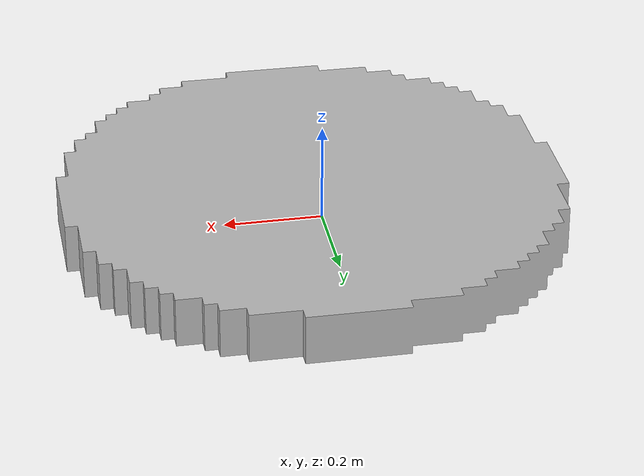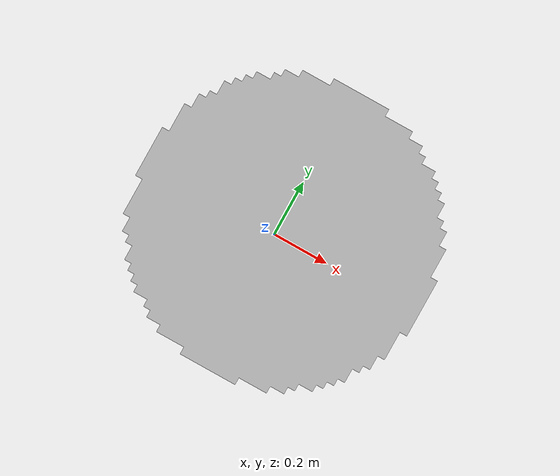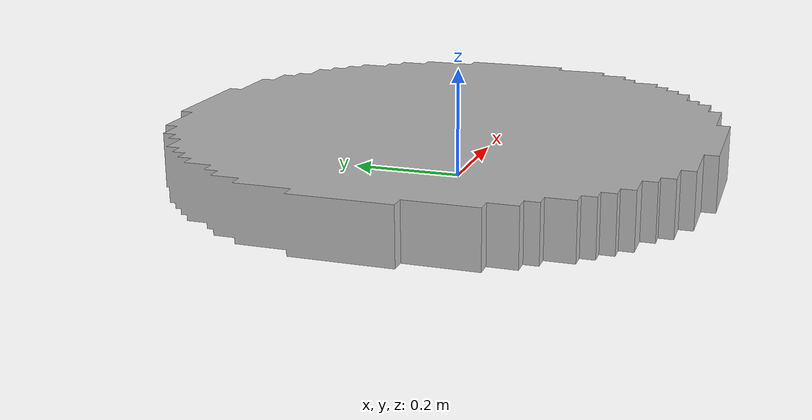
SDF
<?xml version="1.0"?>
<sdf version="1.6">
  <model name="rwc2015/old/tv/foot">
    <link name="1_link">
      <collision name="1_col">
        <geometry>
          <mesh>
            <uri>model://rwc2015/old/tv/foot/shape/disc.stl</uri>
          </mesh>
        </geometry>
      </collision>
      <visual name="1_vis">
        <geometry>
          <mesh>
            <uri>model://rwc2015/old/tv/foot/shape/disc.stl</uri>
          </mesh>
        </geometry>
      </visual>
      <pose>0 0 0 0 0 0</pose>
    </link>
    <static>true</static>
  </model>
</sdf>
